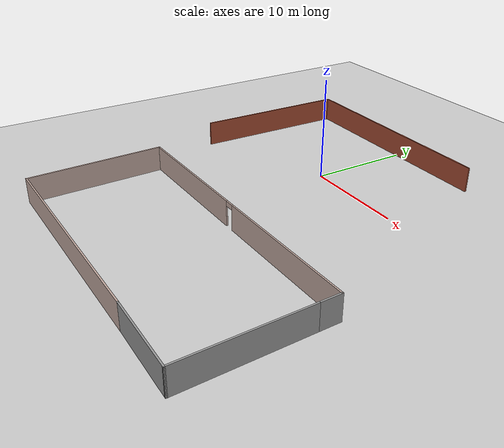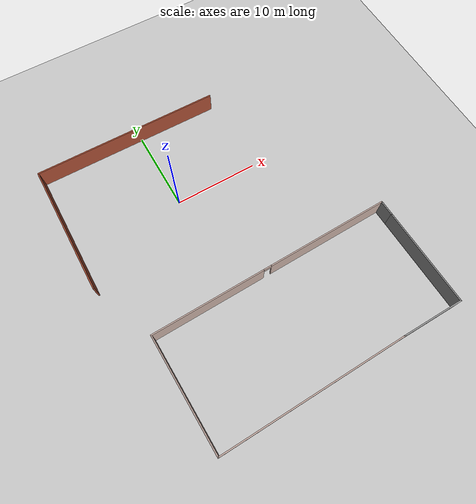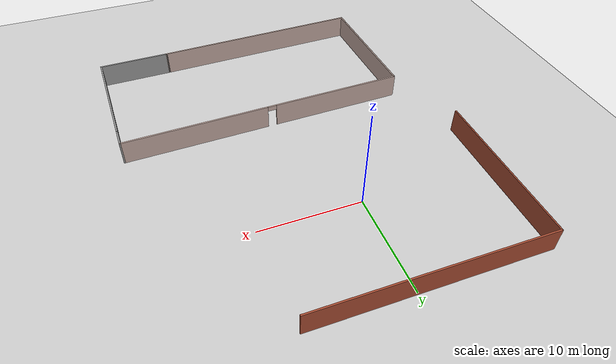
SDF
<sdf version="1.7">
 <world name="default">
  <light name="sun" type="directional">
   <pose>0 0 10 0 -0 0</pose>
   <diffuse>0.8 0.8 0.8 1</diffuse>
   <specular>0.2 0.2 0.2 1</specular>
   <attenuation>
    <range>1000</range>
    <constant>0.9</constant>
    <linear>0.01</linear>
    <quadratic>0.001</quadratic>
   </attenuation>
   <direction>-0.5 0.1 -0.9</direction>
   <spot><inner_angle>0</inner_angle><outer_angle>0</outer_angle><falloff>0</falloff></spot>
  </light>
  <model name="ground_plane">
   <static>1</static>
   <link name="link">
    <collision name="collision">
     <geometry><plane><normal>0 0 1</normal><size>100 100</size></plane></geometry>
     <surface><friction><ode><mu>100</mu><mu2>50</mu2></ode></friction></surface>
    </collision>
    <visual name="visual">
     <cast_shadows>0</cast_shadows>
     <geometry><plane><normal>0 0 1</normal><size>100 100</size></plane></geometry>
     <material>
      <script><uri>file://media/materials/scripts/gazebo.material</uri><name>Gazebo/Grey</name></script>
     </material>
    </visual>
   </link>
  </model>
  <gravity>0 0 -9.8</gravity>
  <magnetic_field>6e-06 2.3e-05 -4.2e-05</magnetic_field>
  <atmosphere type="adiabatic"/>
  <physics type="ode">
   <max_step_size>0.001</max_step_size>
   <real_time_factor>1</real_time_factor>
   <real_time_update_rate>1000</real_time_update_rate>
  </physics>
  <scene><ambient>0.4 0.4 0.4 1</ambient><background>0.7 0.7 0.7 1</background><shadows>1</shadows></scene>
  <audio><device>default</device></audio>
  <spherical_coordinates>
   <surface_model>EARTH_WGS84</surface_model>
   <latitude_deg>0</latitude_deg>
   <longitude_deg>0</longitude_deg>
   <elevation>0</elevation>
   <heading_deg>0</heading_deg>
  </spherical_coordinates>
  <model name="border2">
   <pose>-5.97404 2.17635 -3e-06 -5.3e-05 0.007672 1.56383</pose>
   <link name="Wall_44">
    <collision name="Wall_44_Collision">
     <geometry><box><size>16 0.15 2.5</size></box></geometry>
     <pose>0 0 1.25 0 -0 0</pose>
    </collision>
    <visual name="Wall_44_Visual">
     <pose>0 0 1.25 0 -0 0</pose>
     <geometry><box><size>16 0.15 2.5</size></box></geometry>
     <material>
      <script><uri>file://media/materials/scripts/gazebo.material</uri><name>Gazebo/Bricks</name></script>
      <ambient>1 1 1 1</ambient>
     </material>
     <meta><layer>0</layer></meta>
    </visual>
    <pose>-1e-06 6.74922 0 0 -0 0</pose>
   </link>
   <link name="Wall_46">
    <collision name="Wall_46_Collision">
     <geometry><box><size>22.5 0.15 2.5</size></box></geometry>
     <pose>0 0 1.25 0 -0 0</pose>
    </collision>
    <visual name="Wall_46_Visual">
     <pose>0 0 1.25 0 -0 0</pose>
     <geometry><box><size>22.5 0.15 2.5</size></box></geometry>
     <material>
      <script><uri>file://media/materials/scripts/gazebo.material</uri><name>Gazebo/Bricks</name></script>
      <ambient>1 1 1 1</ambient>
     </material>
     <meta><layer>0</layer></meta>
    </visual>
    <pose>7.925 -4.42578 0 0 -0 -1.5708</pose>
   </link>
   <static>1</static>
  </model>
  <model name="border6">
   <pose>4.94819 -19.5671 3e-06 -0.002183 -0.001014 -3.1186</pose>
   <link name="Wall_58">
    <collision name="Wall_58_Collision">
     <geometry><box><size>22 0.15 2.5</size></box></geometry>
     <pose>0 0 1.25 0 -0 0</pose>
    </collision>
    <visual name="Wall_58_Visual">
     <pose>0 0 1.25 0 -0 0</pose>
     <geometry><box><size>22 0.15 2.5</size></box></geometry>
     <material>
      <script><uri>file://media/materials/scripts/gazebo.material</uri><name>Gazebo/Grey</name></script>
      <ambient>0.760784 0.662745 0.627451 1</ambient>
     </material>
     <meta><layer>0</layer></meta>
    </visual>
    <pose>3.62551 6.62449 0 0 -0 0</pose>
   </link>
   <link name="Wall_59">
    <collision name="Wall_59_Collision">
     <geometry><box><size>13.5 0.15 2.5</size></box></geometry>
     <pose>0 0 1.25 0 -0 0</pose>
    </collision>
    <visual name="Wall_59_Visual">
     <pose>0 0 1.25 0 -0 0</pose>
     <geometry><box><size>13.5 0.15 2.5</size></box></geometry>
     <material>
      <script><uri>file://media/materials/scripts/gazebo.material</uri><name>Gazebo/Grey</name></script>
      <ambient>0.760784 0.662745 0.627451 1</ambient>
     </material>
     <meta><layer>0</layer></meta>
    </visual>
    <pose>14.5505 -0.050513 0 0 -0 -1.5708</pose>
   </link>
   <link name="Wall_60">
    <pose>0.000514 -6.72551 0 0 -0 3.14159</pose>
    <visual name="Wall_60_Visual_0">
     <pose>-7.843 0 1.25 0 -0 0</pose>
     <geometry><box><size>13.564 0.15 2.5</size></box></geometry>
     <material>
      <script><uri>file://media/materials/scripts/gazebo.material</uri><name>Gazebo/Grey</name></script>
      <ambient>0.760784 0.662745 0.627451 1</ambient>
     </material>
     <meta><layer>0</layer></meta>
    </visual>
    <collision name="Wall_60_Collision_0">
     <geometry><box><size>13.564 0.15 2.5</size></box></geometry>
     <pose>-7.843 0 1.25 0 -0 0</pose>
    </collision>
    <visual name="Wall_60_Visual_1">
     <pose>7.232 0 1.25 0 -0 0</pose>
     <geometry><box><size>14.786 0.15 2.5</size></box></geometry>
     <material>
      <script><uri>file://media/materials/scripts/gazebo.material</uri><name>Gazebo/Grey</name></script>
      <ambient>0.760784 0.662745 0.627451 1</ambient>
     </material>
     <meta><layer>0</layer></meta>
    </visual>
    <collision name="Wall_60_Collision_1">
     <geometry><box><size>14.786 0.15 2.5</size></box></geometry>
     <pose>7.232 0 1.25 0 -0 0</pose>
    </collision>
    <visual name="Wall_60_Visual_2">
     <pose>-0.611005 0 2.25 0 -0 0</pose>
     <geometry><box><size>0.9 0.15 0.5</size></box></geometry>
     <material>
      <script><uri>file://media/materials/scripts/gazebo.material</uri><name>Gazebo/Grey</name></script>
      <ambient>0.760784 0.662745 0.627451 1</ambient>
     </material>
     <meta><layer>0</layer></meta>
    </visual>
    <collision name="Wall_60_Collision_2">
     <geometry><box><size>0.9 0.15 0.5</size></box></geometry>
     <pose>-0.611005 0 2.25 0 -0 0</pose>
    </collision>
   </link>
   <link name="Wall_62">
    <collision name="Wall_62_Collision">
     <geometry><box><size>2 0.15 2.5</size></box></geometry>
     <pose>0 0 1.25 0 -0 0</pose>
    </collision>
    <visual name="Wall_62_Visual">
     <pose>0 0 1.25 0 -0 0</pose>
     <geometry><box><size>2 0.15 2.5</size></box></geometry>
     <material>
      <script><uri>file://media/materials/scripts/gazebo.material</uri><name>Gazebo/Grey</name></script>
      <ambient>1 1 1 1</ambient>
     </material>
     <meta><layer>0</layer></meta>
    </visual>
    <pose>-14.5495 -5.80051 0 0 -0 1.5708</pose>
   </link>
   <link name="Wall_63">
    <collision name="Wall_63_Collision">
     <geometry><box><size>11.75 0.15 2.5</size></box></geometry>
     <pose>0 0 1.25 0 -0 0</pose>
    </collision>
    <visual name="Wall_63_Visual">
     <pose>0 0 1.25 0 -0 0</pose>
     <geometry><box><size>11.75 0.15 2.5</size></box></geometry>
     <material>
      <script><uri>file://media/materials/scripts/gazebo.material</uri><name>Gazebo/Grey</name></script>
      <ambient>1 1 1 1</ambient>
     </material>
     <meta><layer>0</layer></meta>
    </visual>
    <pose>-14.5495 0.924487 0 0 -0 1.5708</pose>
   </link>
   <link name="Wall_64">
    <collision name="Wall_64_Collision">
     <geometry><box><size>7.40069 0.15 2.5</size></box></geometry>
     <pose>0 0 1.25 0 -0 0</pose>
    </collision>
    <visual name="Wall_64_Visual">
     <pose>0 0 1.25 0 -0 0</pose>
     <geometry><box><size>7.40069 0.15 2.5</size></box></geometry>
     <material>
      <script><uri>file://media/materials/scripts/gazebo.material</uri><name>Gazebo/Grey</name></script>
      <ambient>1 1 1 1</ambient>
     </material>
     <meta><layer>0</layer></meta>
    </visual>
    <pose>-10.9245 6.67449 0 0 -0 -0.013792</pose>
   </link>
   <static>1</static>
  </model>
 </world>
</sdf>
